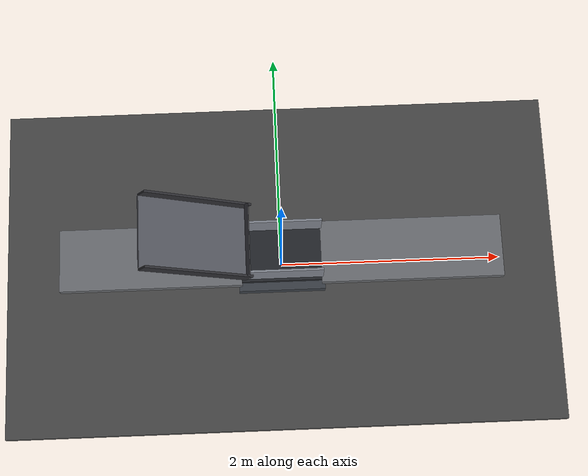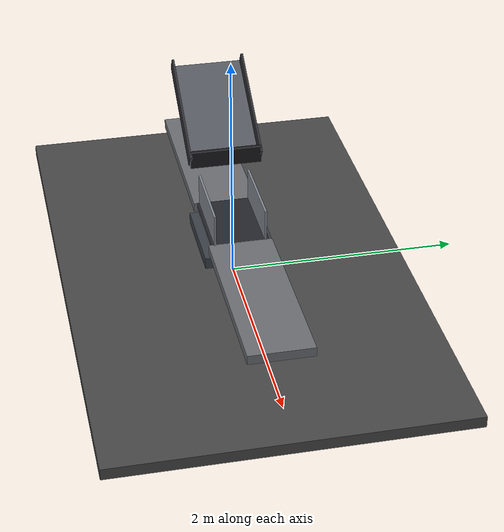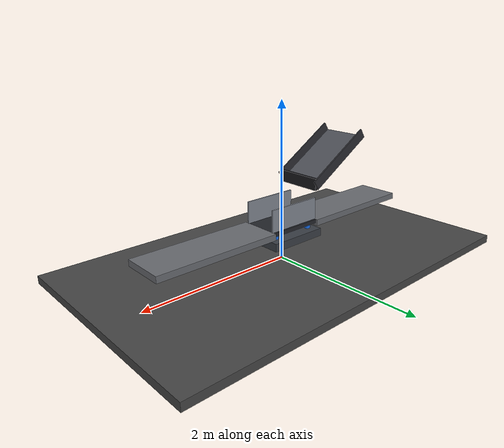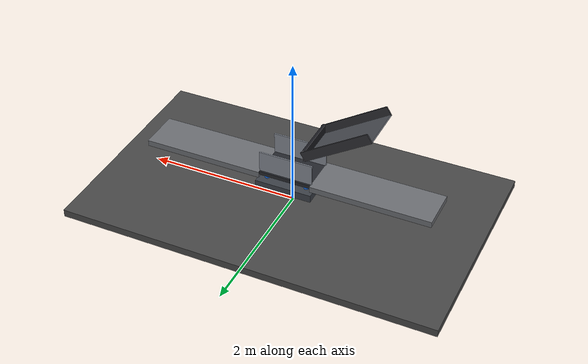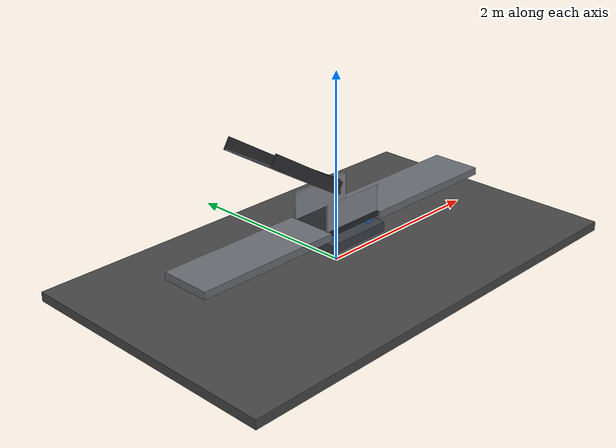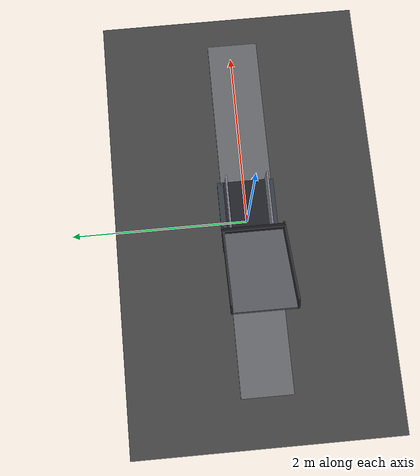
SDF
<?xml version="1.0"?>
<sdf version="1.10">
  <world name="kty_station">
    <gravity>0 0 -9.81</gravity>

    <!-- 0.5 ms resolves the 20-50 Hz platform command and dense contacts. -->
    <physics name="kty_physics" type="ignored">
      <max_step_size>0.0005</max_step_size>
      <real_time_factor>1.0</real_time_factor>
      <real_time_update_rate>2000</real_time_update_rate>
    </physics>

    <plugin filename="gz-sim-physics-system" name="gz::sim::systems::Physics"/>
    <plugin filename="gz-sim-user-commands-system" name="gz::sim::systems::UserCommands"/>
    <plugin filename="gz-sim-scene-broadcaster-system" name="gz::sim::systems::SceneBroadcaster"/>
    <plugin filename="gz-sim-sensors-system" name="gz::sim::systems::Sensors">
      <render_engine>ogre2</render_engine>
    </plugin>

    <gui fullscreen="0">
      <plugin filename="MinimalScene" name="3D View">
        <gz-gui>
          <title>KTY station</title>
          <property type="bool" key="showTitleBar">false</property>
          <property type="string" key="state">docked</property>
        </gz-gui>
        <engine>ogre2</engine>
        <scene>scene</scene>
        <ambient_light>0.45 0.45 0.45</ambient_light>
        <background_color>0.12 0.14 0.18</background_color>
        <camera_pose>-3.4 -3.2 2.7 0 0.45 0.78</camera_pose>
        <camera_clip><near>0.05</near><far>100</far></camera_clip>
      </plugin>

      <plugin filename="GzSceneManager" name="Scene Manager">
        <gz-gui>
          <property key="resizable" type="bool">false</property>
          <property key="width" type="double">5</property>
          <property key="height" type="double">5</property>
          <property key="state" type="string">floating</property>
          <property key="showTitleBar" type="bool">false</property>
        </gz-gui>
      </plugin>

      <plugin filename="InteractiveViewControl" name="Interactive view control">
        <gz-gui>
          <property key="resizable" type="bool">false</property>
          <property key="width" type="double">5</property>
          <property key="height" type="double">5</property>
          <property key="state" type="string">floating</property>
          <property key="showTitleBar" type="bool">false</property>
        </gz-gui>
      </plugin>

      <plugin filename="CameraTracking" name="Camera tracking">
        <gz-gui>
          <property key="resizable" type="bool">false</property>
          <property key="width" type="double">5</property>
          <property key="height" type="double">5</property>
          <property key="state" type="string">floating</property>
          <property key="showTitleBar" type="bool">false</property>
        </gz-gui>
      </plugin>

      <plugin filename="WorldControl" name="World control">
        <gz-gui>
          <title>World control</title>
          <property type="bool" key="showTitleBar">false</property>
          <property type="bool" key="resizable">false</property>
          <property type="double" key="height">72</property>
          <property type="double" key="width">300</property>
          <property type="double" key="z">1</property>
          <property type="string" key="state">floating</property>
          <anchors target="3D View">
            <line own="left" target="left"/>
            <line own="bottom" target="bottom"/>
          </anchors>
        </gz-gui>
        <play_pause>true</play_pause>
        <step>true</step>
        <start_paused>false</start_paused>
        <service>/world/kty_station/control</service>
        <stats_topic>/world/kty_station/stats</stats_topic>
      </plugin>

      <plugin filename="WorldStats" name="World stats">
        <gz-gui>
          <title>World stats</title>
          <property type="bool" key="showTitleBar">false</property>
          <property type="bool" key="resizable">false</property>
          <property type="double" key="height">110</property>
          <property type="double" key="width">290</property>
          <property type="double" key="z">1</property>
          <property type="string" key="state">floating</property>
          <anchors target="3D View">
            <line own="right" target="right"/>
            <line own="bottom" target="bottom"/>
          </anchors>
        </gz-gui>
        <sim_time>true</sim_time>
        <real_time>true</real_time>
        <real_time_factor>true</real_time_factor>
        <iterations>true</iterations>
        <topic>/world/kty_station/stats</topic>
      </plugin>

      <plugin filename="EntityTree" name="Entity tree"/>
    </gui>

    <light type="directional" name="sun">
      <pose>0 0 4 0 0 0</pose>
      <cast_shadows>true</cast_shadows>
      <diffuse>0.85 0.85 0.85 1</diffuse>
      <specular>0.20 0.20 0.20 1</specular>
      <direction>-0.35 0.20 -1.0</direction>
    </light>

    <model name="floor">
      <static>true</static>
      <link name="floor_link">
        <collision name="floor_collision">
          <geometry><box><size>5.0 3.0 0.10</size></box></geometry>
        </collision>
        <visual name="floor_visual">
          <geometry><box><size>5.0 3.0 0.10</size></box></geometry>
          <material><ambient>0.18 0.18 0.18 1</ambient><diffuse>0.28 0.28 0.28 1</diffuse></material>
        </visual>
      </link>
    </model>

    <model name="kty_infeed">
      <static>true</static>
      <pose>-1.15 0 0 0 0 0</pose>
      <link name="belt">
        <pose>0 0 0.46 0 0 0</pose>
        <collision name="belt_collision">
          <geometry><box><size>1.60 0.55 0.08</size></box></geometry>
          <surface><friction><ode><mu>0.75</mu><mu2>0.75</mu2><fdir1>1 0 0</fdir1></ode></friction></surface>
        </collision>
        <visual name="belt_visual">
          <geometry><box><size>1.60 0.55 0.08</size></box></geometry>
          <material><ambient>0.30 0.31 0.33 1</ambient><diffuse>0.42 0.43 0.45 1</diffuse></material>
        </visual>
      </link>
      <plugin filename="gz-sim-track-controller-system" name="gz::sim::systems::TrackController">
        <link>belt</link>
        <track_orientation>0 0 3.14159265359</track_orientation>
        <velocity_topic>/kty/infeed/cmd_vel</velocity_topic>
        <min_velocity>-1.5</min_velocity><max_velocity>1.5</max_velocity>
        <min_acceleration>-4.0</min_acceleration><max_acceleration>4.0</max_acceleration>
        <min_jerk>-20.0</min_jerk><max_jerk>20.0</max_jerk>
      </plugin>
    </model>

    <model name="kty_vibration_platform">
      <link name="base">
        <pose>0 0 0.34 0 0 0</pose>
        <inertial><mass>80</mass><inertia><ixx>2</ixx><iyy>2</iyy><izz>2</izz><ixy>0</ixy><ixz>0</ixz><iyz>0</iyz></inertia></inertial>
        <collision name="base_collision"><geometry><box><size>0.76 0.62 0.10</size></box></geometry></collision>
        <visual name="base_visual"><geometry><box><size>0.76 0.62 0.10</size></box></geometry><material><ambient>0.16 0.18 0.20 1</ambient><diffuse>0.23 0.25 0.28 1</diffuse></material></visual>
      </link>
      <link name="table">
        <pose>0 0 0.475 0 0 0</pose>
        <inertial><mass>35</mass><inertia><ixx>0.80</ixx><iyy>1.40</iyy><izz>1.70</izz><ixy>0</ixy><ixz>0</ixz><iyz>0</iyz></inertia></inertial>
        <collision name="table_collision">
          <geometry><box><size>0.70 0.50 0.05</size></box></geometry>
          <surface><friction><ode><mu>0.75</mu><mu2>0.75</mu2><fdir1>1 0 0</fdir1></ode></friction></surface>
        </collision>
        <visual name="table_visual">
          <geometry><box><size>0.70 0.50 0.05</size></box></geometry>
          <material><ambient>0.08 0.09 0.10 1</ambient><diffuse>0.14 0.15 0.17 1</diffuse></material>
        </visual>
      </link>
      <joint name="base_to_world" type="fixed"><parent>world</parent><child>base</child></joint>
      <joint name="vertical_slide" type="prismatic">
        <parent>base</parent><child>table</child>
        <axis>
          <xyz>0 0 1</xyz>
          <limit><lower>-0.0032</lower><upper>0.0032</upper><effort>20000</effort><velocity>2.0</velocity></limit>
          <dynamics><damping>80</damping><friction>2</friction></dynamics>
        </axis>
      </joint>
      <plugin filename="gz-sim-joint-position-controller-system" name="gz::sim::systems::JointPositionController">
        <joint_name>vertical_slide</joint_name>
        <topic>/kty/platform/cmd_pos</topic>
        <p_gain>250000</p_gain><i_gain>0</i_gain><d_gain>3500</d_gain>
        <cmd_min>-20000</cmd_min><cmd_max>20000</cmd_max>
      </plugin>
      <plugin filename="gz-sim-track-controller-system" name="gz::sim::systems::TrackController">
        <link>table</link>
        <track_orientation>0 0 3.14159265359</track_orientation>
        <velocity_topic>/kty/platform/cmd_vel</velocity_topic>
        <min_velocity>-1.5</min_velocity><max_velocity>1.5</max_velocity>
        <min_acceleration>-4.0</min_acceleration><max_acceleration>4.0</max_acceleration>
        <min_jerk>-20.0</min_jerk><max_jerk>20.0</max_jerk>
      </plugin>
    </model>

    <model name="spring_visuals"><static>true</static><link name="springs">
      <visual name="s1"><pose>-0.27 -0.18 0.415 0 0 0</pose><geometry><cylinder><radius>0.035</radius><length>0.10</length></cylinder></geometry><material><ambient>0.10 0.35 0.80 1</ambient><diffuse>0.10 0.45 0.95 1</diffuse></material></visual>
      <visual name="s2"><pose>-0.27 0.18 0.415 0 0 0</pose><geometry><cylinder><radius>0.035</radius><length>0.10</length></cylinder></geometry><material><ambient>0.10 0.35 0.80 1</ambient><diffuse>0.10 0.45 0.95 1</diffuse></material></visual>
      <visual name="s3"><pose>0.27 -0.18 0.415 0 0 0</pose><geometry><cylinder><radius>0.035</radius><length>0.10</length></cylinder></geometry><material><ambient>0.10 0.35 0.80 1</ambient><diffuse>0.10 0.45 0.95 1</diffuse></material></visual>
      <visual name="s4"><pose>0.27 0.18 0.415 0 0 0</pose><geometry><cylinder><radius>0.035</radius><length>0.10</length></cylinder></geometry><material><ambient>0.10 0.35 0.80 1</ambient><diffuse>0.10 0.45 0.95 1</diffuse></material></visual>
    </link></model>

    <model name="kty_side_guides"><static>true</static><link name="guides">
      <collision name="guide_neg_y_collision"><pose>0 -0.218 0.64 0 0 0</pose><geometry><box><size>0.72 0.018 0.28</size></box></geometry></collision>
      <visual name="guide_neg_y_visual"><pose>0 -0.218 0.64 0 0 0</pose><geometry><box><size>0.72 0.018 0.28</size></box></geometry><material><ambient>0.40 0.42 0.45 1</ambient><diffuse>0.52 0.54 0.58 1</diffuse></material></visual>
      <collision name="guide_pos_y_collision"><pose>0 0.218 0.64 0 0 0</pose><geometry><box><size>0.72 0.018 0.28</size></box></geometry></collision>
      <visual name="guide_pos_y_visual"><pose>0 0.218 0.64 0 0 0</pose><geometry><box><size>0.72 0.018 0.28</size></box></geometry><material><ambient>0.40 0.42 0.45 1</ambient><diffuse>0.52 0.54 0.58 1</diffuse></material></visual>
    </link></model>

    <model name="kty_outfeed">
      <static>true</static>
      <pose>1.15 0 0 0 0 0</pose>
      <link name="belt">
        <pose>0 0 0.46 0 0 0</pose>
        <collision name="belt_collision">
          <geometry><box><size>1.60 0.55 0.08</size></box></geometry>
          <surface><friction><ode><mu>0.75</mu><mu2>0.75</mu2><fdir1>1 0 0</fdir1></ode></friction></surface>
        </collision>
        <visual name="belt_visual"><geometry><box><size>1.60 0.55 0.08</size></box></geometry><material><ambient>0.30 0.31 0.33 1</ambient><diffuse>0.42 0.43 0.45 1</diffuse></material></visual>
      </link>
      <plugin filename="gz-sim-track-controller-system" name="gz::sim::systems::TrackController">
        <link>belt</link><track_orientation>0 0 3.14159265359</track_orientation>
        <velocity_topic>/kty/outfeed/cmd_vel</velocity_topic>
        <min_velocity>-1.5</min_velocity><max_velocity>1.5</max_velocity>
        <min_acceleration>-4.0</min_acceleration><max_acceleration>4.0</max_acceleration>
        <min_jerk>-20.0</min_jerk><max_jerk>20.0</max_jerk>
      </plugin>
    </model>

    <model name="product_chute"><static>true</static><pose>-0.730 0 1.185 0 0.5585053606 0</pose><link name="chute">
      <collision name="bed_collision"><geometry><box><size>1.000 0.600 0.020</size></box></geometry><surface><friction><ode><mu>0.75</mu><mu2>0.75</mu2><fdir1>1 0 0</fdir1></ode></friction></surface></collision>
      <visual name="bed_visual"><geometry><box><size>1.000 0.600 0.020</size></box></geometry><material><ambient>0.22 0.23 0.25 1</ambient><diffuse>0.34 0.35 0.38 1</diffuse></material></visual>
      <collision name="rail_neg_y_collision"><pose>0 -0.310 0.055 0 0 0</pose><geometry><box><size>1.000 0.020 0.130</size></box></geometry></collision>
      <visual name="rail_neg_y_visual"><pose>0 -0.310 0.055 0 0 0</pose><geometry><box><size>1.000 0.020 0.130</size></box></geometry><material><ambient>0.12 0.12 0.13 1</ambient><diffuse>0.18 0.18 0.20 1</diffuse></material></visual>
      <collision name="rail_pos_y_collision"><pose>0 0.310 0.055 0 0 0</pose><geometry><box><size>1.000 0.020 0.130</size></box></geometry></collision>
      <visual name="rail_pos_y_visual"><pose>0 0.310 0.055 0 0 0</pose><geometry><box><size>1.000 0.020 0.130</size></box></geometry><material><ambient>0.12 0.12 0.13 1</ambient><diffuse>0.18 0.18 0.20 1</diffuse></material></visual>
    </link></model>

    <model name="product_shutter">
      <link name="anchor"><pose>-0.285 0 0.98 0 0 0</pose><inertial><mass>20</mass><inertia><ixx>1</ixx><iyy>1</iyy><izz>1</izz><ixy>0</ixy><ixz>0</ixz><iyz>0</iyz></inertia></inertial></link>
      <link name="plate"><pose>-0.285 0 0.98 0 0 0</pose><inertial><mass>3</mass><inertia><ixx>0.10</ixx><iyy>0.04</iyy><izz>0.12</izz><ixy>0</ixy><ixz>0</ixz><iyz>0</iyz></inertia></inertial>
        <collision name="plate_collision"><geometry><box><size>0.035 0.620 0.150</size></box></geometry><surface><friction><ode><mu>0.75</mu><mu2>0.75</mu2></ode></friction></surface></collision>
        <visual name="plate_visual"><geometry><box><size>0.035 0.620 0.150</size></box></geometry><material><ambient>0.06 0.06 0.07 1</ambient><diffuse>0.10 0.10 0.12 1</diffuse></material></visual>
      </link>
      <joint name="anchor_to_world" type="fixed"><parent>world</parent><child>anchor</child></joint>
      <joint name="shutter_slide" type="prismatic"><parent>anchor</parent><child>plate</child><axis><xyz>0 0 1</xyz><limit><lower>0</lower><upper>0.24</upper><effort>2000</effort><velocity>1.0</velocity></limit><dynamics><damping>20</damping></dynamics></axis></joint>
      <plugin filename="gz-sim-joint-position-controller-system" name="gz::sim::systems::JointPositionController">
        <joint_name>shutter_slide</joint_name><topic>/kty/shutter/cmd_pos</topic>
        <p_gain>12000</p_gain><i_gain>0</i_gain><d_gain>500</d_gain><cmd_min>-2000</cmd_min><cmd_max>2000</cmd_max>
      </plugin>
    </model>

    <model name="kty_vision_station"><static>true</static><link name="camera_link">
      <pose>0 0 1.75 0 1.57079632679 1.57079632679</pose>
      <sensor name="overhead_rgbd" type="rgbd_camera">
        <always_on>true</always_on><update_rate>15</update_rate><topic>/kty/camera</topic>
        <camera>
          <horizontal_fov>1.05</horizontal_fov>
          <image><width>800</width><height>600</height><format>R8G8B8</format></image>
          <clip><near>0.20</near><far>3.0</far></clip>
          <noise><type>gaussian</type><mean>0.0</mean><stddev>0.002</stddev></noise>
        </camera>
        <visualize>true</visualize>
      </sensor>
    </link></model>
  </world>
</sdf>
